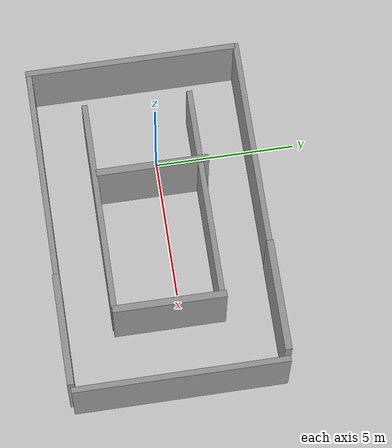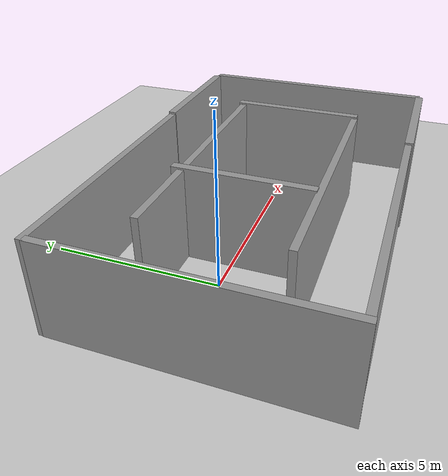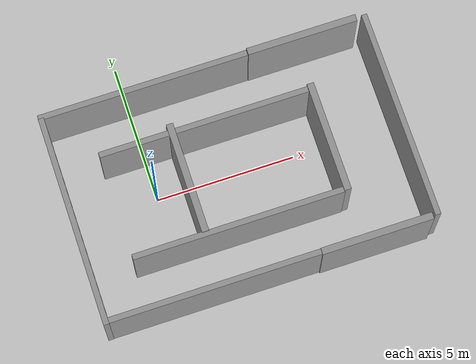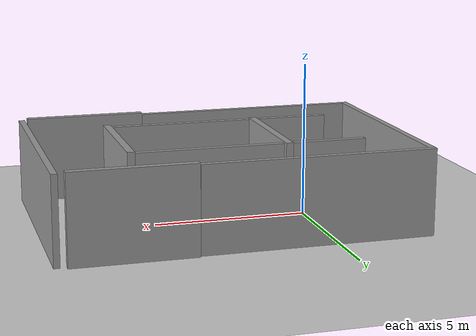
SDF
<sdf version="1.6">
 <world name="default">
  <light name="sun" type="directional">
   <pose>0 0 10 0 -0 0</pose>
   <diffuse>0.8 0.8 0.8 1</diffuse>
   <specular>0.1 0.1 0.1 1</specular>
   <attenuation>
    <range>1000</range>
    <constant>0.9</constant>
    <linear>0.01</linear>
    <quadratic>0.001</quadratic>
   </attenuation>
   <direction>-0.5 0.5 -1</direction>
  </light>
  <model name="ground_plane">
   <static>1</static>
   <link name="link">
    <collision name="collision">
     <geometry><plane><normal>0 0 1</normal><size>100 100</size></plane></geometry>
     <surface><friction><ode><mu>100</mu><mu2>50</mu2></ode></friction></surface>
    </collision>
    <visual name="visual">
     <cast_shadows>0</cast_shadows>
     <geometry><plane><normal>0 0 1</normal><size>100 100</size></plane></geometry>
     <material>
      <script><uri>file://media/materials/scripts/gazebo.material</uri><name>Gazebo/Grey</name></script>
     </material>
    </visual>
   </link>
  </model>
  <gravity>0 0 -9.8</gravity>
  <magnetic_field>6e-06 2.3e-05 -4.2e-05</magnetic_field>
  <atmosphere type="adiabatic"/>
  <physics name="default_physics" default="0" type="ode">
   <max_step_size>0.001</max_step_size>
   <real_time_factor>1</real_time_factor>
   <real_time_update_rate>1000</real_time_update_rate>
  </physics>
  <scene><ambient>0.4 0.4 0.4 1</ambient><background>0.7 0.7 0.7 1</background><shadows>1</shadows></scene>
  <spherical_coordinates>
   <surface_model>EARTH_WGS84</surface_model>
   <latitude_deg>0</latitude_deg>
   <longitude_deg>0</longitude_deg>
   <elevation>0</elevation>
   <heading_deg>0</heading_deg>
  </spherical_coordinates>
  <model name="grey_wall">
   <static>1</static>
   <link name="link">
    <pose>0 0 1.4 0 -0 0</pose>
    <collision name="collision"><geometry><box><size>7.5 0.2 2.8</size></box></geometry></collision>
    <visual name="visual">
     <cast_shadows>0</cast_shadows>
     <geometry><box><size>7.5 0.2 2.8</size></box></geometry>
     <material>
      <script>
       <uri>model://grey_wall/materials/scripts</uri>
       <uri>model://grey_wall/materials/textures</uri>
       <name>vrc/grey_wall</name>
      </script>
     </material>
    </visual>
   </link>
   <pose>0.815773 -4.117 0 0 -0 0</pose>
  </model>
  <model name="grey_wall_0">
   <static>1</static>
   <link name="link">
    <pose>0 0 1.4 0 -0 0</pose>
    <collision name="collision"><geometry><box><size>7.5 0.2 2.8</size></box></geometry></collision>
    <visual name="visual">
     <cast_shadows>0</cast_shadows>
     <geometry><box><size>7.5 0.2 2.8</size></box></geometry>
     <material>
      <script>
       <uri>model://grey_wall/materials/scripts</uri>
       <uri>model://grey_wall/materials/textures</uri>
       <name>vrc/grey_wall</name>
      </script>
     </material>
    </visual>
   </link>
   <pose>2.22042 -2.3224 0 0 -0 0</pose>
  </model>
  <model name="grey_wall_1">
   <static>1</static>
   <link name="link">
    <pose>0 0 1.4 0 -0 0</pose>
    <collision name="collision"><geometry><box><size>7.5 0.2 2.8</size></box></geometry></collision>
    <visual name="visual">
     <cast_shadows>0</cast_shadows>
     <geometry><box><size>7.5 0.2 2.8</size></box></geometry>
     <material>
      <script>
       <uri>model://grey_wall/materials/scripts</uri>
       <uri>model://grey_wall/materials/textures</uri>
       <name>vrc/grey_wall</name>
      </script>
     </material>
    </visual>
   </link>
   <pose>-3.02915 -0.478442 0 0 0 -1.57054</pose>
  </model>
  <model name="grey_wall_2">
   <static>1</static>
   <link name="link">
    <pose>0 0 1.4 0 -0 0</pose>
    <collision name="collision"><geometry><box><size>7.5 0.2 2.8</size></box></geometry></collision>
    <visual name="visual">
     <cast_shadows>0</cast_shadows>
     <geometry><box><size>7.5 0.2 2.8</size></box></geometry>
     <material>
      <script>
       <uri>model://grey_wall/materials/scripts</uri>
       <uri>model://grey_wall/materials/textures</uri>
       <name>vrc/grey_wall</name>
      </script>
     </material>
    </visual>
   </link>
   <pose>0.633057 3.305 0 0 -0 0</pose>
  </model>
  <model name="grey_wall_3">
   <static>1</static>
   <link name="link">
    <pose>0 0 1.4 0 -0 0</pose>
    <collision name="collision"><geometry><box><size>7.5 0.2 2.8</size></box></geometry></collision>
    <visual name="visual">
     <cast_shadows>0</cast_shadows>
     <geometry><box><size>7.5 0.2 2.8</size></box></geometry>
     <material>
      <script>
       <uri>model://grey_wall/materials/scripts</uri>
       <uri>model://grey_wall/materials/textures</uri>
       <name>vrc/grey_wall</name>
      </script>
     </material>
    </visual>
   </link>
   <pose>2.21623 1.40865 0 0 -0 0</pose>
  </model>
  <model name="grey_wall_small">
   <link name="link">
    <pose>-0.853742 -3.42387 1.4 0 -0 0</pose>
    <inertial>
     <inertia><ixx>nan</ixx><ixy>0</ixy><ixz>0</ixz><iyy>nan</iyy><iyz>0</iyz><izz>nan</izz></inertia>
     <mass>0</mass>
    </inertial>
    <visual name="visual">
     <cast_shadows>0</cast_shadows>
     <geometry><box><size>3.95261 0.24504 2.90808</size></box></geometry>
     <material>
      <script>
       <uri>model://grey_wall/materials/scripts</uri>
       <uri>model://grey_wall/materials/textures</uri>
       <name>vrc/grey_wall</name>
      </script>
      <ambient>1 1 1 1</ambient>
      <diffuse>1 1 1 1</diffuse>
      <specular>0 0 0 1</specular>
      <emissive>0 0 0 1</emissive>
     </material>
    </visual>
    <collision name="collision">
     <geometry><box><size>3.95261 0.24504 2.90808</size></box></geometry>
     <surface>
      <friction>
       <ode><mu>1</mu><mu2>1</mu2><fdir1>0 0 0</fdir1><slip1>0</slip1><slip2>0</slip2></ode>
       <torsional>
        <coefficient>1</coefficient>
        <patch_radius>0</patch_radius>
        <surface_radius>0</surface_radius>
        <use_patch_radius>1</use_patch_radius>
        <ode><slip>0</slip></ode>
       </torsional>
      </friction>
      <bounce><restitution_coefficient>0</restitution_coefficient><threshold>1e+06</threshold></bounce>
      <contact>
       <collide_without_contact>0</collide_without_contact>
       <collide_without_contact_bitmask>1</collide_without_contact_bitmask>
       <collide_bitmask>1</collide_bitmask>
       <ode>
        <soft_cfm>0</soft_cfm>
        <soft_erp>0.2</soft_erp>
        <kp>1e+13</kp>
        <kd>1</kd>
        <max_vel>0.01</max_vel>
        <min_depth>0</min_depth>
       </ode>
       <bullet>
        <split_impulse>1</split_impulse>
        <split_impulse_penetration_threshold>-0.01</split_impulse_penetration_threshold>
        <soft_cfm>0</soft_cfm>
        <soft_erp>0.2</soft_erp>
        <kp>1e+13</kp>
        <kd>1</kd>
       </bullet>
      </contact>
     </surface>
    </collision>
   </link>
   <static>1</static>
   <pose>2.65175 0.439787 0 0 -0 1.5705</pose>
  </model>
  <model name="grey_wall_small_0">
   <link name="link">
    <pose>-0.853742 -3.42387 1.4 0 -0 0</pose>
    <inertial>
     <inertia><ixx>nan</ixx><ixy>0</ixy><ixz>0</ixz><iyy>nan</iyy><iyz>0</iyz><izz>nan</izz></inertia>
     <mass>0</mass>
    </inertial>
    <visual name="visual">
     <cast_shadows>0</cast_shadows>
     <geometry><box><size>3.95261 0.24504 2.90808</size></box></geometry>
     <material>
      <script>
       <uri>model://grey_wall/materials/scripts</uri>
       <uri>model://grey_wall/materials/textures</uri>
       <name>vrc/grey_wall</name>
      </script>
      <ambient>1 1 1 1</ambient>
      <diffuse>1 1 1 1</diffuse>
      <specular>0 0 0 1</specular>
      <emissive>0 0 0 1</emissive>
     </material>
    </visual>
    <collision name="collision">
     <geometry><box><size>3.95261 0.24504 2.90808</size></box></geometry>
     <surface>
      <friction>
       <ode><mu>1</mu><mu2>1</mu2><fdir1>0 0 0</fdir1><slip1>0</slip1><slip2>0</slip2></ode>
       <torsional>
        <coefficient>1</coefficient>
        <patch_radius>0</patch_radius>
        <surface_radius>0</surface_radius>
        <use_patch_radius>1</use_patch_radius>
        <ode><slip>0</slip></ode>
       </torsional>
      </friction>
      <bounce><restitution_coefficient>0</restitution_coefficient><threshold>1e+06</threshold></bounce>
      <contact>
       <collide_without_contact>0</collide_without_contact>
       <collide_without_contact_bitmask>1</collide_without_contact_bitmask>
       <collide_bitmask>1</collide_bitmask>
       <ode>
        <soft_cfm>0</soft_cfm>
        <soft_erp>0.2</soft_erp>
        <kp>1e+13</kp>
        <kd>1</kd>
        <max_vel>0.01</max_vel>
        <min_depth>0</min_depth>
       </ode>
       <bullet>
        <split_impulse>1</split_impulse>
        <split_impulse_penetration_threshold>-0.01</split_impulse_penetration_threshold>
        <soft_cfm>0</soft_cfm>
        <soft_erp>0.2</soft_erp>
        <kp>1e+13</kp>
        <kd>1</kd>
       </bullet>
      </contact>
     </surface>
    </collision>
   </link>
   <static>1</static>
   <pose>7.36807 -0.70972 0 0 -0 0</pose>
  </model>
  <model name="grey_wall_small_1">
   <link name="link">
    <pose>-0.853742 -3.42387 1.4 0 -0 0</pose>
    <inertial>
     <inertia><ixx>nan</ixx><ixy>0</ixy><ixz>0</ixz><iyy>nan</iyy><iyz>0</iyz><izz>nan</izz></inertia>
     <mass>0</mass>
    </inertial>
    <visual name="visual">
     <cast_shadows>0</cast_shadows>
     <geometry><box><size>3.95261 0.24504 2.90808</size></box></geometry>
     <material>
      <script>
       <uri>model://grey_wall/materials/scripts</uri>
       <uri>model://grey_wall/materials/textures</uri>
       <name>vrc/grey_wall</name>
      </script>
      <ambient>1 1 1 1</ambient>
      <diffuse>1 1 1 1</diffuse>
      <specular>0 0 0 1</specular>
      <emissive>0 0 0 1</emissive>
     </material>
    </visual>
    <collision name="collision">
     <geometry><box><size>3.95261 0.24504 2.90808</size></box></geometry>
     <surface>
      <friction>
       <ode><mu>1</mu><mu2>1</mu2><fdir1>0 0 0</fdir1><slip1>0</slip1><slip2>0</slip2></ode>
       <torsional>
        <coefficient>1</coefficient>
        <patch_radius>0</patch_radius>
        <surface_radius>0</surface_radius>
        <use_patch_radius>1</use_patch_radius>
        <ode><slip>0</slip></ode>
       </torsional>
      </friction>
      <bounce><restitution_coefficient>0</restitution_coefficient><threshold>1e+06</threshold></bounce>
      <contact>
       <collide_without_contact>0</collide_without_contact>
       <collide_without_contact_bitmask>1</collide_without_contact_bitmask>
       <collide_bitmask>1</collide_bitmask>
       <ode>
        <soft_cfm>0</soft_cfm>
        <soft_erp>0.2</soft_erp>
        <kp>1e+13</kp>
        <kd>1</kd>
        <max_vel>0.01</max_vel>
        <min_depth>0</min_depth>
       </ode>
       <bullet>
        <split_impulse>1</split_impulse>
        <split_impulse_penetration_threshold>-0.01</split_impulse_penetration_threshold>
        <soft_cfm>0</soft_cfm>
        <soft_erp>0.2</soft_erp>
        <kp>1e+13</kp>
        <kd>1</kd>
       </bullet>
      </contact>
     </surface>
    </collision>
   </link>
   <static>1</static>
   <pose>7.23045 6.74374 0 0 -0 0</pose>
  </model>
  <model name="grey_wall_5">
   <static>1</static>
   <link name="link">
    <pose>0 0 1.4 0 -0 0</pose>
    <collision name="collision"><geometry><box><size>7.5 0.2 2.8</size></box></geometry></collision>
    <visual name="visual">
     <cast_shadows>0</cast_shadows>
     <geometry><box><size>7.5 0.2 2.8</size></box></geometry>
     <material>
      <script>
       <uri>model://grey_wall/materials/scripts</uri>
       <uri>model://grey_wall/materials/textures</uri>
       <name>vrc/grey_wall</name>
      </script>
     </material>
    </visual>
   </link>
   <pose>8.66507 -0.395128 0 0 -0 1.57352</pose>
  </model>
  <model name="grey_wall_small_2">
   <link name="link">
    <pose>-0.853742 -3.42387 1.4 0 -0 0</pose>
    <inertial>
     <inertia><ixx>nan</ixx><ixy>0</ixy><ixz>0</ixz><iyy>nan</iyy><iyz>0</iyz><izz>nan</izz></inertia>
     <mass>0</mass>
    </inertial>
    <visual name="visual">
     <cast_shadows>0</cast_shadows>
     <geometry><box><size>3.95261 0.24504 2.90808</size></box></geometry>
     <material>
      <script>
       <uri>model://grey_wall/materials/scripts</uri>
       <uri>model://grey_wall/materials/textures</uri>
       <name>vrc/grey_wall</name>
      </script>
      <ambient>1 1 1 1</ambient>
      <diffuse>1 1 1 1</diffuse>
      <specular>0 0 0 1</specular>
      <emissive>0 0 0 1</emissive>
     </material>
    </visual>
    <collision name="collision">
     <geometry><box><size>3.95261 0.24504 2.90808</size></box></geometry>
     <surface>
      <friction>
       <ode><mu>1</mu><mu2>1</mu2><fdir1>0 0 0</fdir1><slip1>0</slip1><slip2>0</slip2></ode>
       <torsional>
        <coefficient>1</coefficient>
        <patch_radius>0</patch_radius>
        <surface_radius>0</surface_radius>
        <use_patch_radius>1</use_patch_radius>
        <ode><slip>0</slip></ode>
       </torsional>
      </friction>
      <bounce><restitution_coefficient>0</restitution_coefficient><threshold>1e+06</threshold></bounce>
      <contact>
       <collide_without_contact>0</collide_without_contact>
       <collide_without_contact_bitmask>1</collide_without_contact_bitmask>
       <collide_bitmask>1</collide_bitmask>
       <ode>
        <soft_cfm>0</soft_cfm>
        <soft_erp>0.2</soft_erp>
        <kp>1e+13</kp>
        <kd>1</kd>
        <max_vel>0.01</max_vel>
        <min_depth>0</min_depth>
       </ode>
       <bullet>
        <split_impulse>1</split_impulse>
        <split_impulse_penetration_threshold>-0.01</split_impulse_penetration_threshold>
        <soft_cfm>0</soft_cfm>
        <soft_erp>0.2</soft_erp>
        <kp>1e+13</kp>
        <kd>1</kd>
       </bullet>
      </contact>
     </surface>
    </collision>
   </link>
   <static>1</static>
   <pose>-2.35892 0.57124 0 0 -0 1.57161</pose>
  </model>
 </world>
</sdf>
